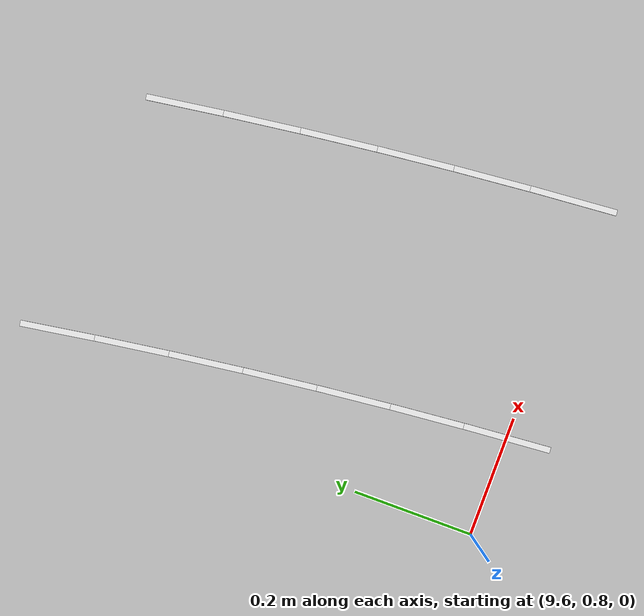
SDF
<sdf version="1.7">
 <world name="default">
  <model name="ground_plane">
   <static>1</static>
   <link name="link">
    <collision name="collision">
     <geometry><plane><normal>0 0 1</normal><size>100 100</size></plane></geometry>
     <surface>
      <contact><collide_bitmask>65535</collide_bitmask></contact>
      <friction><ode><mu>100</mu><mu2>50</mu2></ode></friction>
     </surface>
    </collision>
    <visual name="visual">
     <cast_shadows>0</cast_shadows>
     <geometry><plane><normal>0 0 1</normal><size>100 100</size></plane></geometry>
     <material>
      <script><uri>file://media/materials/scripts/gazebo.material</uri><name>Gazebo/Grey</name></script>
     </material>
    </visual>
   </link>
  </model>
  <model name="lane_line_left_6">
   <static>1</static>
   <link name="link">
    <pose>0 0 -0.004 0 -0 0</pose>
    <visual name="visual">
     <geometry><box><size>0.1457 0.01 0.01</size></box></geometry>
     <material><ambient>1 1 1 1</ambient><diffuse>1 1 1 1</diffuse></material>
    </visual>
    <collision name="collision"><geometry><box><size>0.1457 0.01 0.01</size></box></geometry></collision>
   </link>
   <pose>9.76713 0.799572 0 0 -0 1.65248</pose>
  </model>
  <model name="lane_line_right_6">
   <static>1</static>
   <link name="link">
    <pose>0 0 -0.004 0 -0 0</pose>
    <visual name="visual">
     <geometry><box><size>0.1457 0.01 0.01</size></box></geometry>
     <material><ambient>1 1 1 1</ambient><diffuse>1 1 1 1</diffuse></material>
    </visual>
    <collision name="collision"><geometry><box><size>0.1457 0.01 0.01</size></box></geometry></collision>
   </link>
   <pose>10.1658 0.832208 0 0 -0 1.65248</pose>
  </model>
  <model name="lane_line_left_7">
   <static>1</static>
   <link name="link">
    <pose>0 0 -0.004 0 -0 0</pose>
    <visual name="visual">
     <geometry><box><size>0.1457 0.01 0.01</size></box></geometry>
     <material><ambient>1 1 1 1</ambient><diffuse>1 1 1 1</diffuse></material>
    </visual>
    <collision name="collision"><geometry><box><size>0.1457 0.01 0.01</size></box></geometry></collision>
   </link>
   <pose>9.75631 0.922243 0 0 -0 1.66504</pose>
  </model>
  <model name="lane_line_right_7">
   <static>1</static>
   <link name="link">
    <pose>0 0 -0.004 0 -0 0</pose>
    <visual name="visual">
     <geometry><box><size>0.1457 0.01 0.01</size></box></geometry>
     <material><ambient>1 1 1 1</ambient><diffuse>1 1 1 1</diffuse></material>
    </visual>
    <collision name="collision"><geometry><box><size>0.1457 0.01 0.01</size></box></geometry></collision>
   </link>
   <pose>10.1545 0.959886 0 0 -0 1.66504</pose>
  </model>
  <model name="lane_line_left_8">
   <static>1</static>
   <link name="link">
    <pose>0 0 -0.004 0 -0 0</pose>
    <visual name="visual">
     <geometry><box><size>0.1457 0.01 0.01</size></box></geometry>
     <material><ambient>1 1 1 1</ambient><diffuse>1 1 1 1</diffuse></material>
    </visual>
    <collision name="collision"><geometry><box><size>0.1457 0.01 0.01</size></box></geometry></collision>
   </link>
   <pose>9.74395 1.04477 0 0 -0 1.67761</pose>
  </model>
  <model name="lane_line_right_8">
   <static>1</static>
   <link name="link">
    <pose>0 0 -0.004 0 -0 0</pose>
    <visual name="visual">
     <geometry><box><size>0.1457 0.01 0.01</size></box></geometry>
     <material><ambient>1 1 1 1</ambient><diffuse>1 1 1 1</diffuse></material>
    </visual>
    <collision name="collision"><geometry><box><size>0.1457 0.01 0.01</size></box></geometry></collision>
   </link>
   <pose>10.1417 1.08741 0 0 -0 1.67761</pose>
  </model>
  <model name="lane_line_left_9">
   <static>1</static>
   <link name="link">
    <pose>0 0 -0.004 0 -0 0</pose>
    <visual name="visual">
     <geometry><box><size>0.1457 0.01 0.01</size></box></geometry>
     <material><ambient>1 1 1 1</ambient><diffuse>1 1 1 1</diffuse></material>
    </visual>
    <collision name="collision"><geometry><box><size>0.1457 0.01 0.01</size></box></geometry></collision>
   </link>
   <pose>9.73005 1.16713 0 0 -0 1.69018</pose>
  </model>
  <model name="lane_line_right_9">
   <static>1</static>
   <link name="link">
    <pose>0 0 -0.004 0 -0 0</pose>
    <visual name="visual">
     <geometry><box><size>0.1457 0.01 0.01</size></box></geometry>
     <material><ambient>1 1 1 1</ambient><diffuse>1 1 1 1</diffuse></material>
    </visual>
    <collision name="collision"><geometry><box><size>0.1457 0.01 0.01</size></box></geometry></collision>
   </link>
   <pose>10.1272 1.21477 0 0 -0 1.69018</pose>
  </model>
  <model name="lane_line_left_10">
   <static>1</static>
   <link name="link">
    <pose>0 0 -0.004 0 -0 0</pose>
    <visual name="visual">
     <geometry><box><size>0.1457 0.01 0.01</size></box></geometry>
     <material><ambient>1 1 1 1</ambient><diffuse>1 1 1 1</diffuse></material>
    </visual>
    <collision name="collision"><geometry><box><size>0.1457 0.01 0.01</size></box></geometry></collision>
   </link>
   <pose>9.71462 1.2893 0 0 -0 1.70274</pose>
  </model>
  <model name="lane_line_right_10">
   <static>1</static>
   <link name="link">
    <pose>0 0 -0.004 0 -0 0</pose>
    <visual name="visual">
     <geometry><box><size>0.1457 0.01 0.01</size></box></geometry>
     <material><ambient>1 1 1 1</ambient><diffuse>1 1 1 1</diffuse></material>
    </visual>
    <collision name="collision"><geometry><box><size>0.1457 0.01 0.01</size></box></geometry></collision>
   </link>
   <pose>10.1111 1.34193 0 0 -0 1.70274</pose>
  </model>
  <model name="lane_line_left_11">
   <static>1</static>
   <link name="link">
    <pose>0 0 -0.004 0 -0 0</pose>
    <visual name="visual">
     <geometry><box><size>0.1457 0.01 0.01</size></box></geometry>
     <material><ambient>1 1 1 1</ambient><diffuse>1 1 1 1</diffuse></material>
    </visual>
    <collision name="collision"><geometry><box><size>0.1457 0.01 0.01</size></box></geometry></collision>
   </link>
   <pose>9.69765 1.41128 0 0 -0 1.71531</pose>
  </model>
  <model name="lane_line_right_11">
   <static>1</static>
   <link name="link">
    <pose>0 0 -0.004 0 -0 0</pose>
    <visual name="visual">
     <geometry><box><size>0.1457 0.01 0.01</size></box></geometry>
     <material><ambient>1 1 1 1</ambient><diffuse>1 1 1 1</diffuse></material>
    </visual>
    <collision name="collision"><geometry><box><size>0.1457 0.01 0.01</size></box></geometry></collision>
   </link>
   <pose>10.0935 1.46888 0 0 -0 1.71531</pose>
  </model>
  <model name="lane_line_left_12">
   <static>1</static>
   <link name="link">
    <pose>0 0 -0.004 0 -0 0</pose>
    <visual name="visual">
     <geometry><box><size>0.1457 0.01 0.01</size></box></geometry>
     <material><ambient>1 1 1 1</ambient><diffuse>1 1 1 1</diffuse></material>
    </visual>
    <collision name="collision"><geometry><box><size>0.1457 0.01 0.01</size></box></geometry></collision>
   </link>
   <pose>9.67915 1.53303 0 0 -0 1.72788</pose>
  </model>
 </world>
</sdf>
